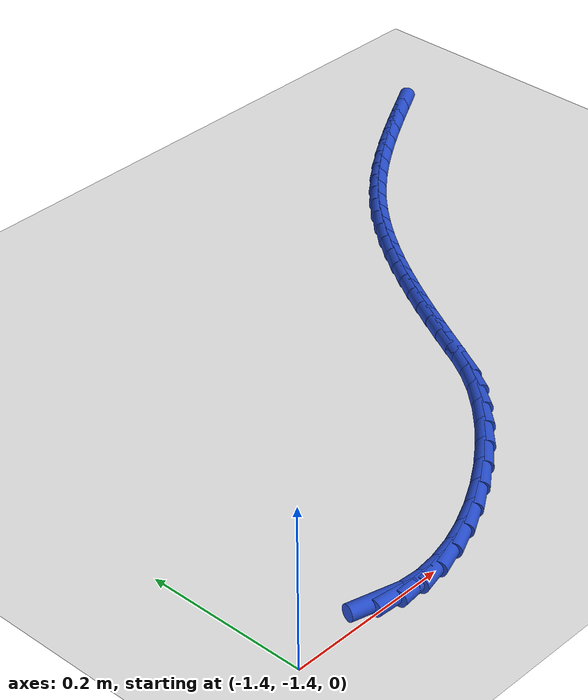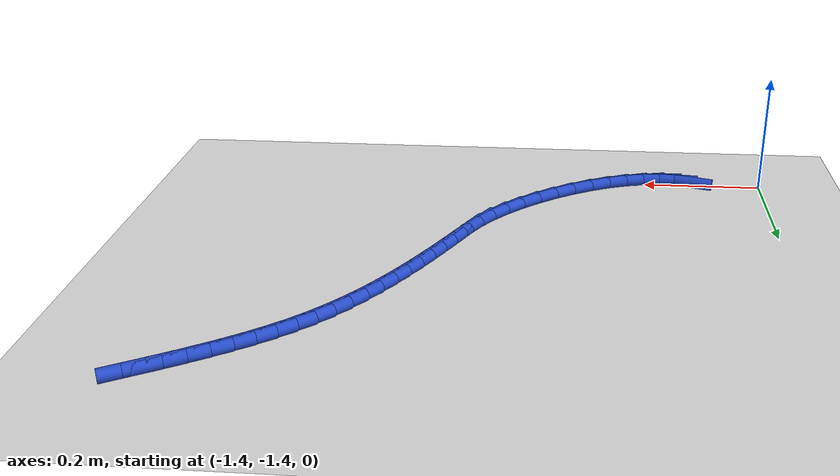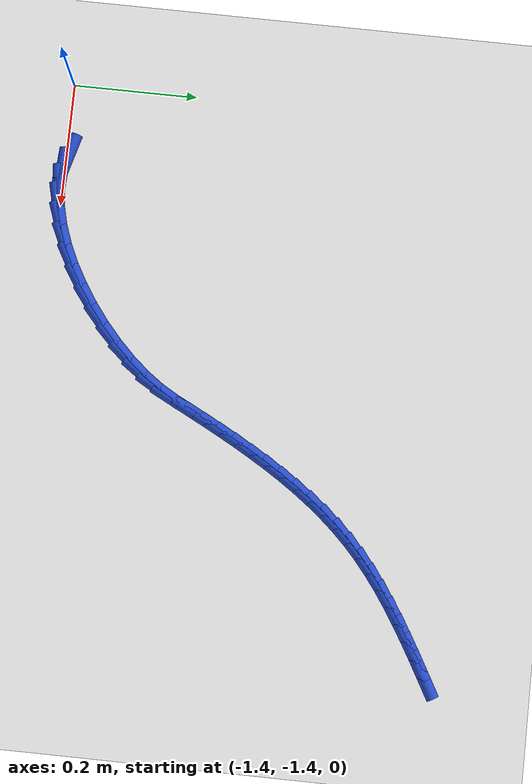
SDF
<sdf version="1.6">
 <world name="default">
  <model name="ground_plane">
   <static>1</static>
   <link name="link">
    <collision name="collision">
     <geometry><plane><normal>0 0 1</normal><size>100 100</size></plane></geometry>
     <surface><friction><ode><mu>100</mu><mu2>50</mu2></ode></friction></surface>
    </collision>
    <visual name="visual">
     <cast_shadows>0</cast_shadows>
     <geometry><plane><normal>0 0 1</normal><size>100 100</size></plane></geometry>
     <material>
      <script><uri>file://media/materials/scripts/gazebo.material</uri><name>Gazebo/WhiteGlow</name></script>
     </material>
    </visual>
   </link>
  </model>
  <model name="line">
   <link name="link_213">
    <pose>-1.2772265894405959 -1.3964973856030138 0.01 0 1.57 -0.265958639876142</pose>
    <collision name="collision">
     <geometry><cylinder><radius>0.01</radius><length>0.08</length></cylinder></geometry>
    </collision>
    <visual name="visual">
     <material>
      <script><name>Gazebo/Blue</name><uri>file://media/materials/scripts/gazebo.material</uri></script>
     </material>
     <geometry><cylinder><radius>0.01</radius><length>0.08</length></cylinder></geometry>
    </visual>
   </link>
   <link name="link_214">
    <pose>-1.2525259114832616 -1.4032261482882264 0.01 0 1.57 -0.05916799898948477</pose>
    <collision name="collision">
     <geometry><cylinder><radius>0.01</radius><length>0.08</length></cylinder></geometry>
    </collision>
    <visual name="visual">
     <material>
      <script><name>Gazebo/Blue</name><uri>file://media/materials/scripts/gazebo.material</uri></script>
     </material>
     <geometry><cylinder><radius>0.01</radius><length>0.08</length></cylinder></geometry>
    </visual>
   </link>
   <link name="link_215">
    <pose>-1.2254355589611905 -1.4048309033461261 0.01 0 1.57 0.10609791345341575</pose>
    <collision name="collision">
     <geometry><cylinder><radius>0.01</radius><length>0.08</length></cylinder></geometry>
    </collision>
    <visual name="visual">
     <material>
      <script><name>Gazebo/Blue</name><uri>file://media/materials/scripts/gazebo.material</uri></script>
     </material>
     <geometry><cylinder><radius>0.01</radius><length>0.08</length></cylinder></geometry>
    </visual>
   </link>
   <link name="link_216">
    <pose>-1.1964797719700586 -1.4017471751343198 0.01 0 1.57 0.23758540563000066</pose>
    <collision name="collision">
     <geometry><cylinder><radius>0.01</radius><length>0.08</length></cylinder></geometry>
    </collision>
    <visual name="visual">
     <material>
      <script><name>Gazebo/Blue</name><uri>file://media/materials/scripts/gazebo.material</uri></script>
     </material>
     <geometry><cylinder><radius>0.01</radius><length>0.08</length></cylinder></geometry>
    </visual>
   </link>
   <link name="link_217">
    <pose>-1.1661827906055398 -1.3944104880104127 0.01 0 1.57 0.34422065601750895</pose>
    <collision name="collision">
     <geometry><cylinder><radius>0.01</radius><length>0.08</length></cylinder></geometry>
    </collision>
    <visual name="visual">
     <material>
      <script><name>Gazebo/Blue</name><uri>file://media/materials/scripts/gazebo.material</uri></script>
     </material>
     <geometry><cylinder><radius>0.01</radius><length>0.08</length></cylinder></geometry>
    </visual>
   </link>
   <link name="link_218">
    <pose>-1.1350688549633128 -1.3832563663320123 0.01 0 1.57 0.43347440002655346</pose>
    <collision name="collision">
     <geometry><cylinder><radius>0.01</radius><length>0.08</length></cylinder></geometry>
    </collision>
    <visual name="visual">
     <material>
      <script><name>Gazebo/Blue</name><uri>file://media/materials/scripts/gazebo.material</uri></script>
     </material>
     <geometry><cylinder><radius>0.01</radius><length>0.08</length></cylinder></geometry>
    </visual>
   </link>
   <link name="link_219">
    <pose>-1.1036622051390514 -1.3687203344567247 0.01 0 1.57 0.5110826867799785</pose>
    <collision name="collision">
     <geometry><cylinder><radius>0.01</radius><length>0.08</length></cylinder></geometry>
    </collision>
    <visual name="visual">
     <material>
      <script><name>Gazebo/Blue</name><uri>file://media/materials/scripts/gazebo.material</uri></script>
     </material>
     <geometry><cylinder><radius>0.01</radius><length>0.08</length></cylinder></geometry>
    </visual>
   </link>
   <link name="link_220">
    <pose>-1.072487081228432 -1.3512379167421567 0.01 0 1.57 0.5814585953095859</pose>
    <collision name="collision">
     <geometry><cylinder><radius>0.01</radius><length>0.08</length></cylinder></geometry>
    </collision>
    <visual name="visual">
     <material>
      <script><name>Gazebo/Blue</name><uri>file://media/materials/scripts/gazebo.material</uri></script>
     </material>
     <geometry><cylinder><radius>0.01</radius><length>0.08</length></cylinder></geometry>
    </visual>
   </link>
   <link name="link_221">
    <pose>-1.0420677233271298 -1.3312446375459144 0.01 0 1.57 0.6481869720363145</pose>
    <collision name="collision">
     <geometry><cylinder><radius>0.01</radius><length>0.08</length></cylinder></geometry>
    </collision>
    <visual name="visual">
     <material>
      <script><name>Gazebo/Blue</name><uri>file://media/materials/scripts/gazebo.material</uri></script>
     </material>
     <geometry><cylinder><radius>0.01</radius><length>0.08</length></cylinder></geometry>
    </visual>
   </link>
   <link name="link_222">
    <pose>-1.0129283715308213 -1.3091760212256043 0.01 0 1.57 0.7144667080082199</pose>
    <collision name="collision">
     <geometry><cylinder><radius>0.01</radius><length>0.08</length></cylinder></geometry>
    </collision>
    <visual name="visual">
     <material>
      <script><name>Gazebo/Blue</name><uri>file://media/materials/scripts/gazebo.material</uri></script>
     </material>
     <geometry><cylinder><radius>0.01</radius><length>0.08</length></cylinder></geometry>
    </visual>
   </link>
   <link name="link_223">
    <pose>-0.9855932659351812 -1.2854675921388325 0.01 0 1.57 0.7835170948788529</pose>
    <collision name="collision">
     <geometry><cylinder><radius>0.01</radius><length>0.08</length></cylinder></geometry>
    </collision>
    <visual name="visual">
     <material>
      <script><name>Gazebo/Blue</name><uri>file://media/materials/scripts/gazebo.material</uri></script>
     </material>
     <geometry><cylinder><radius>0.01</radius><length>0.08</length></cylinder></geometry>
    </visual>
   </link>
   <link name="link_224">
    <pose>-0.9605866466358857 -1.2605548746432058 0.01 0 1.57 0.8590092692440309</pose>
    <collision name="collision">
     <geometry><cylinder><radius>0.01</radius><length>0.08</length></cylinder></geometry>
    </collision>
    <visual name="visual">
     <material>
      <script><name>Gazebo/Blue</name><uri>file://media/materials/scripts/gazebo.material</uri></script>
     </material>
     <geometry><cylinder><radius>0.01</radius><length>0.08</length></cylinder></geometry>
    </visual>
   </link>
   <link name="link_225">
    <pose>-0.9384327537286103 -1.2348733930963307 0.01 0 1.57 0.9456014475841021</pose>
    <collision name="collision">
     <geometry><cylinder><radius>0.01</radius><length>0.08</length></cylinder></geometry>
    </collision>
    <visual name="visual">
     <material>
      <script><name>Gazebo/Blue</name><uri>file://media/materials/scripts/gazebo.material</uri></script>
     </material>
     <geometry><cylinder><radius>0.01</radius><length>0.08</length></cylinder></geometry>
    </visual>
   </link>
   <link name="link_226">
    <pose>-0.9196558273090307 -1.2088586718558125 0.01 0 1.57 1.0435331144182234</pose>
    <collision name="collision">
     <geometry><cylinder><radius>0.01</radius><length>0.08</length></cylinder></geometry>
    </collision>
    <visual name="visual">
     <material>
      <script><name>Gazebo/Blue</name><uri>file://media/materials/scripts/gazebo.material</uri></script>
     </material>
     <geometry><cylinder><radius>0.01</radius><length>0.08</length></cylinder></geometry>
    </visual>
   </link>
   <link name="link_227">
    <pose>-0.9045376631699206 -1.1828934450446387 0.01 0 1.57 1.0982575615451804</pose>
    <collision name="collision">
     <geometry><cylinder><radius>0.01</radius><length>0.08</length></cylinder></geometry>
    </collision>
    <visual name="visual">
     <material>
      <script><name>Gazebo/Blue</name><uri>file://media/materials/scripts/gazebo.material</uri></script>
     </material>
     <geometry><cylinder><radius>0.01</radius><length>0.08</length></cylinder></geometry>
    </visual>
   </link>
   <link name="link_228">
    <pose>-0.8912510419514619 -1.1569005648445707 0.01 0 1.57 1.09755862190782</pose>
    <collision name="collision">
     <geometry><cylinder><radius>0.01</radius><length>0.08</length></cylinder></geometry>
    </collision>
    <visual name="visual">
     <material>
      <script><name>Gazebo/Blue</name><uri>file://media/materials/scripts/gazebo.material</uri></script>
     </material>
     <geometry><cylinder><radius>0.01</radius><length>0.08</length></cylinder></geometry>
    </visual>
   </link>
   <link name="link_229">
    <pose>-0.8778444577123369 -1.130718169496038 0.01 0 1.57 1.0877600783788632</pose>
    <collision name="collision">
     <geometry><cylinder><radius>0.01</radius><length>0.08</length></cylinder></geometry>
    </collision>
    <visual name="visual">
     <material>
      <script><name>Gazebo/Blue</name><uri>file://media/materials/scripts/gazebo.material</uri></script>
     </material>
     <geometry><cylinder><radius>0.01</radius><length>0.08</length></cylinder></geometry>
    </visual>
   </link>
   <link name="link_230">
    <pose>-0.8640693201793811 -1.1044536050551979 0.01 0 1.57 1.0737860347402002</pose>
    <collision name="collision">
     <geometry><cylinder><radius>0.01</radius><length>0.08</length></cylinder></geometry>
    </collision>
    <visual name="visual">
     <material>
      <script><name>Gazebo/Blue</name><uri>file://media/materials/scripts/gazebo.material</uri></script>
     </material>
     <geometry><cylinder><radius>0.01</radius><length>0.08</length></cylinder></geometry>
    </visual>
   </link>
   <link name="link_231">
    <pose>-0.8498513497919175 -1.078241829516547 0.01 0 1.57 1.0555925451493393</pose>
    <collision name="collision">
     <geometry><cylinder><radius>0.01</radius><length>0.08</length></cylinder></geometry>
    </collision>
    <visual name="visual">
     <material>
      <script><name>Gazebo/Blue</name><uri>file://media/materials/scripts/gazebo.material</uri></script>
     </material>
     <geometry><cylinder><radius>0.01</radius><length>0.08</length></cylinder></geometry>
    </visual>
   </link>
   <link name="link_232">
    <pose>-0.8351162669892684 -1.0522178008745826 0.01 0 1.57 1.0330795997839808</pose>
    <collision name="collision">
     <geometry><cylinder><radius>0.01</radius><length>0.08</length></cylinder></geometry>
    </collision>
    <visual name="visual">
     <material>
      <script><name>Gazebo/Blue</name><uri>file://media/materials/scripts/gazebo.material</uri></script>
     </material>
     <geometry><cylinder><radius>0.01</radius><length>0.08</length></cylinder></geometry>
    </visual>
   </link>
   <link name="link_233">
    <pose>-0.8197897922107565 -1.0265164771238011 0.01 0 1.57 1.006099871291716</pose>
    <collision name="collision">
     <geometry><cylinder><radius>0.01</radius><length>0.08</length></cylinder></geometry>
    </collision>
    <visual name="visual">
     <material>
      <script><name>Gazebo/Blue</name><uri>file://media/materials/scripts/gazebo.material</uri></script>
     </material>
     <geometry><cylinder><radius>0.01</radius><length>0.08</length></cylinder></geometry>
    </visual>
   </link>
   <link name="link_234">
    <pose>-0.803797645895704 -1.0012728162586988 0.01 0 1.57 0.9744692588592598</pose>
    <collision name="collision">
     <geometry><cylinder><radius>0.01</radius><length>0.08</length></cylinder></geometry>
    </collision>
    <visual name="visual">
     <material>
      <script><name>Gazebo/Blue</name><uri>file://media/materials/scripts/gazebo.material</uri></script>
     </material>
     <geometry><cylinder><radius>0.01</radius><length>0.08</length></cylinder></geometry>
    </visual>
   </link>
   <link name="link_235">
    <pose>-0.7870655484834349 -0.976621776273775 0.01 0 1.57 0.9379807198980334</pose>
    <collision name="collision">
     <geometry><cylinder><radius>0.01</radius><length>0.08</length></cylinder></geometry>
    </collision>
    <visual name="visual">
     <material>
      <script><name>Gazebo/Blue</name><uri>file://media/materials/scripts/gazebo.material</uri></script>
     </material>
     <geometry><cylinder><radius>0.01</radius><length>0.08</length></cylinder></geometry>
    </visual>
   </link>
   <link name="link_236">
    <pose>-0.7695192204132709 -0.9526983151635249 0.01 0 1.57 0.8964230530873072</pose>
    <collision name="collision">
     <geometry><cylinder><radius>0.01</radius><length>0.08</length></cylinder></geometry>
    </collision>
    <visual name="visual">
     <material>
      <script><name>Gazebo/Blue</name><uri>file://media/materials/scripts/gazebo.material</uri></script>
     </material>
     <geometry><cylinder><radius>0.01</radius><length>0.08</length></cylinder></geometry>
    </visual>
   </link>
   <link name="link_237">
    <pose>-0.7510843821245351 -0.9296373909224459 0.01 0 1.57 0.8496062914010611</pose>
    <collision name="collision">
     <geometry><cylinder><radius>0.01</radius><length>0.08</length></cylinder></geometry>
    </collision>
    <visual name="visual">
     <material>
      <script><name>Gazebo/Blue</name><uri>file://media/materials/scripts/gazebo.material</uri></script>
     </material>
     <geometry><cylinder><radius>0.01</radius><length>0.08</length></cylinder></geometry>
    </visual>
   </link>
   <link name="link_238">
    <pose>-0.7316867540565499 -0.9075739615450349 0.01 0 1.57 0.797394953376631</pose>
    <collision name="collision">
     <geometry><cylinder><radius>0.01</radius><length>0.08</length></cylinder></geometry>
    </collision>
    <visual name="visual">
     <material>
      <script><name>Gazebo/Blue</name><uri>file://media/materials/scripts/gazebo.material</uri></script>
     </material>
     <geometry><cylinder><radius>0.01</radius><length>0.08</length></cylinder></geometry>
    </visual>
   </link>
   <link name="link_239">
    <pose>-0.7112520566486383 -0.8866429850257889 0.01 0 1.57 0.7411794573836934</pose>
    <collision name="collision">
     <geometry><cylinder><radius>0.01</radius><length>0.08</length></cylinder></geometry>
    </collision>
    <visual name="visual">
     <material>
      <script><name>Gazebo/Blue</name><uri>file://media/materials/scripts/gazebo.material</uri></script>
     </material>
     <geometry><cylinder><radius>0.01</radius><length>0.08</length></cylinder></geometry>
    </visual>
   </link>
   <link name="link_240">
    <pose>-0.6897285864441915 -0.86694352829119 0.01 0 1.57 0.6887761990211401</pose>
    <collision name="collision">
     <geometry><cylinder><radius>0.01</radius><length>0.08</length></cylinder></geometry>
    </collision>
    <visual name="visual">
     <material>
      <script><name>Gazebo/Blue</name><uri>file://media/materials/scripts/gazebo.material</uri></script>
     </material>
     <geometry><cylinder><radius>0.01</radius><length>0.08</length></cylinder></geometry>
    </visual>
   </link>
   <link name="link_241">
    <pose>-0.6671847864348619 -0.8483836516913349 0.01 0 1.57 0.6430539708402553</pose>
    <collision name="collision">
     <geometry><cylinder><radius>0.01</radius><length>0.08</length></cylinder></geometry>
    </collision>
    <visual name="visual">
     <material>
      <script><name>Gazebo/Blue</name><uri>file://media/materials/scripts/gazebo.material</uri></script>
     </material>
     <geometry><cylinder><radius>0.01</radius><length>0.08</length></cylinder></geometry>
    </visual>
   </link>
   <link name="link_242">
    <pose>-0.6437289097325276 -0.8308081261917426 0.01 0 1.57 0.6041859428946544</pose>
    <collision name="collision">
     <geometry><cylinder><radius>0.01</radius><length>0.08</length></cylinder></geometry>
    </collision>
    <visual name="visual">
     <material>
      <script><name>Gazebo/Blue</name><uri>file://media/materials/scripts/gazebo.material</uri></script>
     </material>
     <geometry><cylinder><radius>0.01</radius><length>0.08</length></cylinder></geometry>
    </visual>
   </link>
   <link name="link_243">
    <pose>-0.6194692352778255 -0.8140616816958527 0.01 0 1.57 0.5721879014638718</pose>
    <collision name="collision">
     <geometry><cylinder><radius>0.01</radius><length>0.08</length></cylinder></geometry>
    </collision>
    <visual name="visual">
     <material>
      <script><name>Gazebo/Blue</name><uri>file://media/materials/scripts/gazebo.material</uri></script>
     </material>
     <geometry><cylinder><radius>0.01</radius><length>0.08</length></cylinder></geometry>
    </visual>
   </link>
   <link name="link_244">
    <pose>-0.5945140420113945 -0.7979890481071055 0.01 0 1.57 0.5469752092100824</pose>
    <collision name="collision">
     <geometry><cylinder><radius>0.01</radius><length>0.08</length></cylinder></geometry>
    </collision>
    <visual name="visual">
     <material>
      <script><name>Gazebo/Blue</name><uri>file://media/materials/scripts/gazebo.material</uri></script>
     </material>
     <geometry><cylinder><radius>0.01</radius><length>0.08</length></cylinder></geometry>
    </visual>
   </link>
   <link name="link_245">
    <pose>-0.5689716088738713 -0.78243495532894 0.01 0 1.57 0.5284091565117931</pose>
    <collision name="collision">
     <geometry><cylinder><radius>0.01</radius><length>0.08</length></cylinder></geometry>
    </collision>
    <visual name="visual">
     <material>
      <script><name>Gazebo/Blue</name><uri>file://media/materials/scripts/gazebo.material</uri></script>
     </material>
     <geometry><cylinder><radius>0.01</radius><length>0.08</length></cylinder></geometry>
    </visual>
   </link>
   <link name="link_246">
    <pose>-0.5429502148058941 -0.7672441332647965 0.01 0 1.57 0.5160692894525283</pose>
    <collision name="collision">
     <geometry><cylinder><radius>0.01</radius><length>0.08</length></cylinder></geometry>
    </collision>
    <visual name="visual">
     <material>
      <script><name>Gazebo/Blue</name><uri>file://media/materials/scripts/gazebo.material</uri></script>
     </material>
     <geometry><cylinder><radius>0.01</radius><length>0.08</length></cylinder></geometry>
    </visual>
   </link>
   <link name="link_247">
    <pose>-0.5165576155896645 -0.7522701807290304 0.01 0 1.57 0.5082887603363266</pose>
    <collision name="collision">
     <geometry><cylinder><radius>0.01</radius><length>0.08</length></cylinder></geometry>
    </collision>
    <visual name="visual">
     <material>
      <script><name>Gazebo/Blue</name><uri>file://media/materials/scripts/gazebo.material</uri></script>
     </material>
     <geometry><cylinder><radius>0.01</radius><length>0.08</length></cylinder></geometry>
    </visual>
   </link>
  </model>
 </world>
</sdf>
